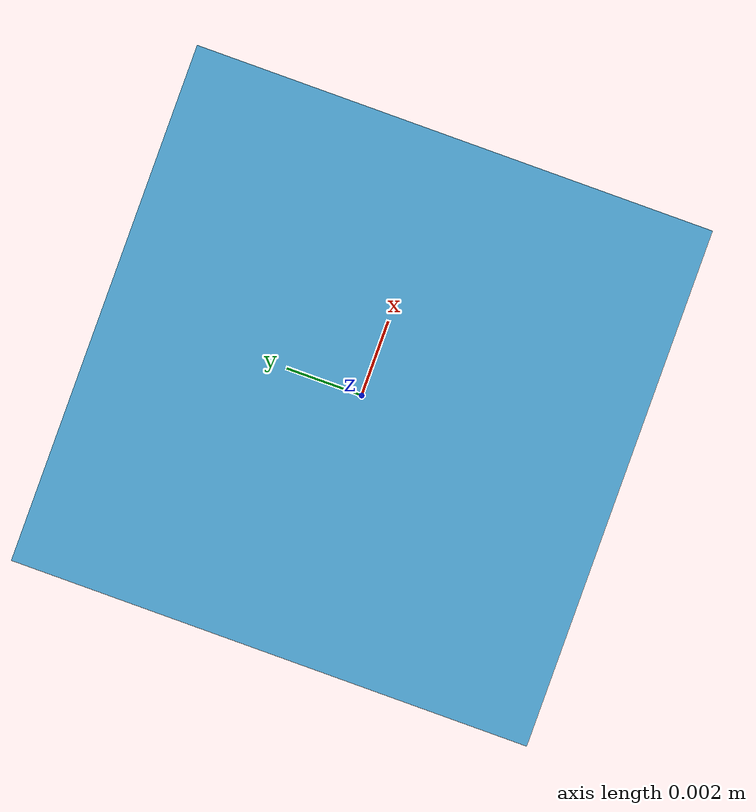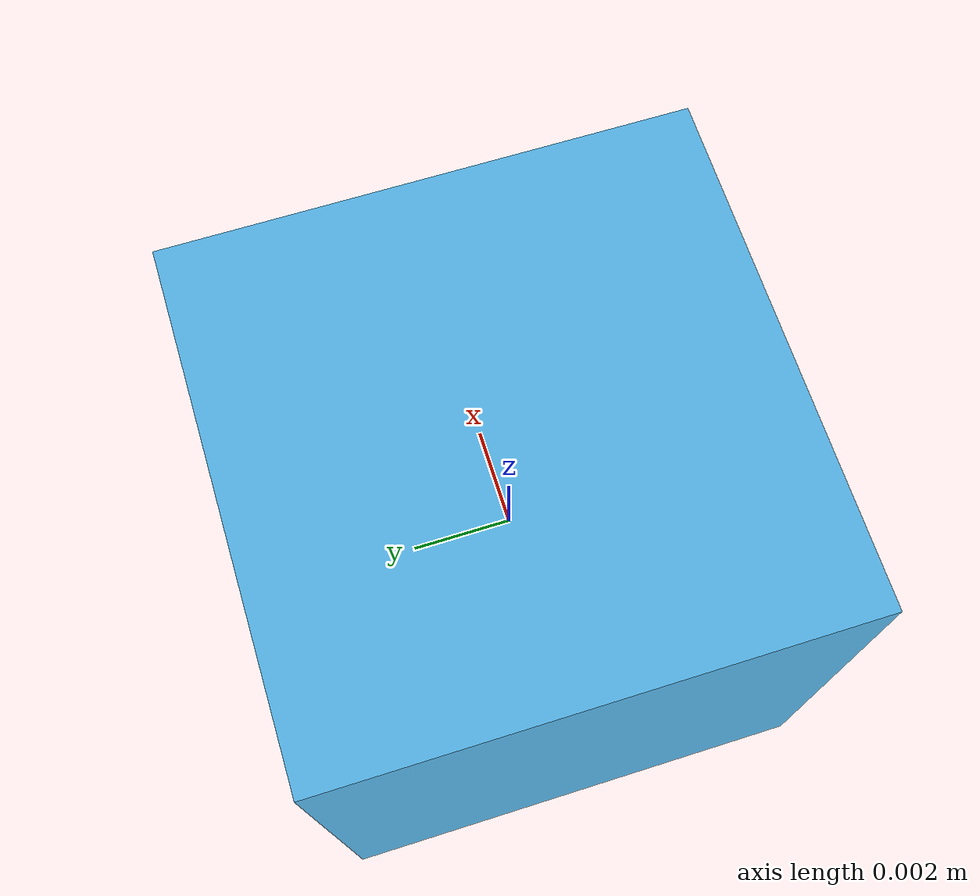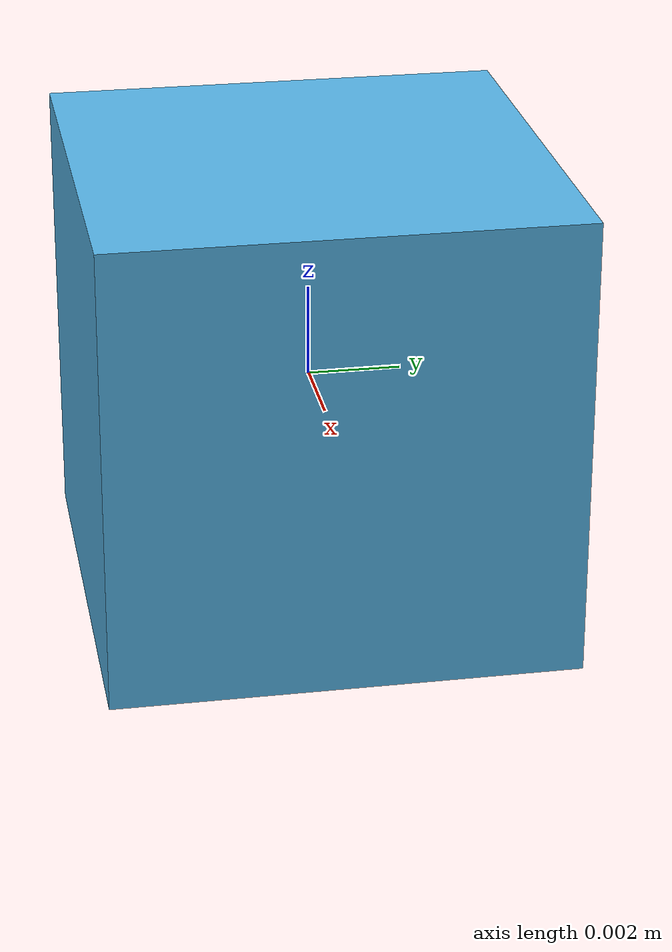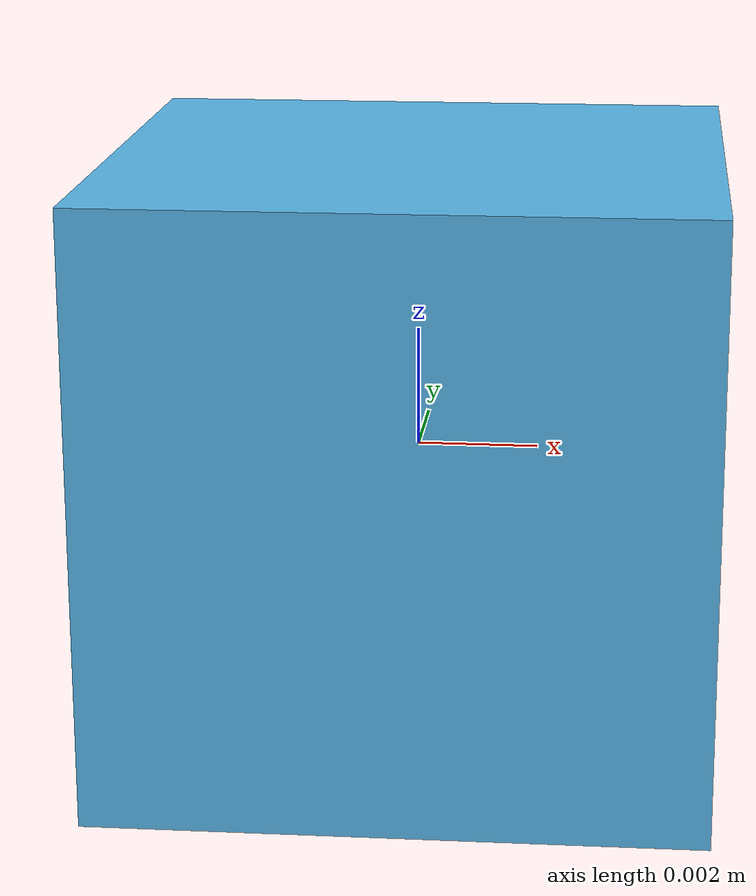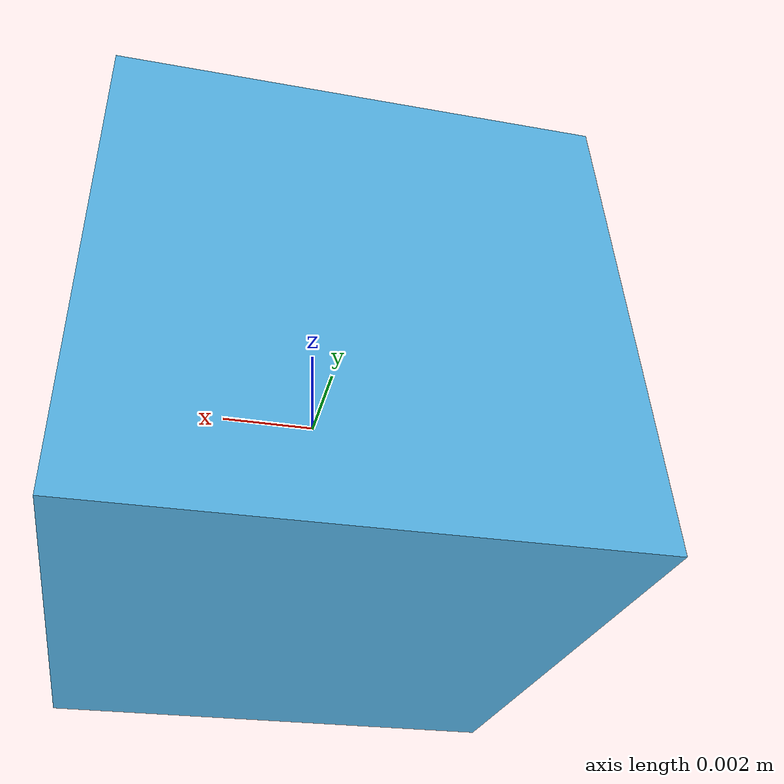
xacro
<?xml version="1.0"?>

<!-- camera_gui-->

<robot name ="camera_gui" xmlns:xacro="http://www.ros.org/wiki/xacro">

  <!-- Base Link -->
  <link name="camera_base_link">
    <visual>
      <origin rpy="0 0 0" xyz="0 0 0"/>
      <geometry>
        <box size="0.001 0.001 0.001"/>
      </geometry>
      <material name="red"/>
    </visual>

    <collision>
      <origin rpy="0 0 0" xyz="0 0 0"/>
      <geometry>
        <box size="0.001 0.001 0.001"/>
      </geometry>
    </collision>
  </link>

  <joint name="camera_joint" type="fixed">
    <parent link="camera_base_link"/>
    <child link="camera_link"/>
    <origin xyz="0 0 0"/>
  </joint>

  <!-- ros_control plugin -->
  <gazebo>
    <plugin name="gazebo_ros_control" filename="libgazebo_ros_control.so">
      <robotNamespace>/camera_gui</robotNamespace>
      <robotSimType>gazebo_ros_control/DefaultRobotHWSim</robotSimType>
      <legacyModeNS>true</legacyModeNS>
    </plugin>
  </gazebo>

  <link name="camera_link">
    <visual>
      <origin rpy="0 0 0" xyz="0 0 0"/>
      <geometry>
        <box size="0.01 0.01 0.01"/>
      </geometry>
    </visual>

    <collision>
      <origin rpy="0 0 0" xyz="0 0 0"/>
      <geometry>
        <box size="0.01 0.01 0.01"/>
      </geometry>
    </collision>

    <inertial>
      <mass value="1e-5" />
      <origin xyz="0 0 0" rpy="0 0 0"/>
      <inertia ixx="1e-6" ixy="0" ixz="0" iyy="1e-6" iyz="0" izz="1e-6" />
    </inertial>
  </link>

<!-- camera -->
  <gazebo reference="camera_link">
    <sensor type="camera" name="camera">
      <update_rate>30.0</update_rate>
      <camera name="head">
        <horizontal_fov>1.3962634</horizontal_fov>
        <image>
          <width>800</width>
          <height>800</height>
          <format>R8G8B8</format>
        </image>
        <clip>
          <near>0.02</near>
          <far>300</far>
        </clip>
        <noise>
          <type>gaussian</type>
          <!-- Noise is sampled independently per pixel on each frame.
               That pixel's noise value is added to each of its color
               channels, which at that point lie in the range [0,1]. -->
          <mean>0.0</mean>
          <stddev>0.007</stddev>
        </noise>
      </camera>
      <plugin name="camera_controller" filename="libgazebo_ros_camera.so">
        <alwaysOn>true</alwaysOn>
        <updateRate>0.0</updateRate>
        <cameraName>camera_gui/camera</cameraName>
        <imageTopicName>image_raw</imageTopicName>
        <cameraInfoTopicName>camera_info</cameraInfoTopicName>
        <frameName>camera_link</frameName>
        <!-- setting hackBaseline to anything but 0.0 will cause a misalignment
            between the gazebo sensor image and the frame it is supposed to
            be attached to -->
        <hackBaseline>0.0</hackBaseline>
        <distortionK1>0.0</distortionK1>
        <distortionK2>0.0</distortionK2>
        <distortionK3>0.0</distortionK3>
        <distortionT1>0.0</distortionT1>
        <distortionT2>0.0</distortionT2>
        <CxPrime>0</CxPrime>
        <Cx>0.0</Cx>
        <Cy>0.0</Cy>
        <focalLength>0.0</focalLength>
      </plugin>
    </sensor>
  </gazebo>

</robot>
